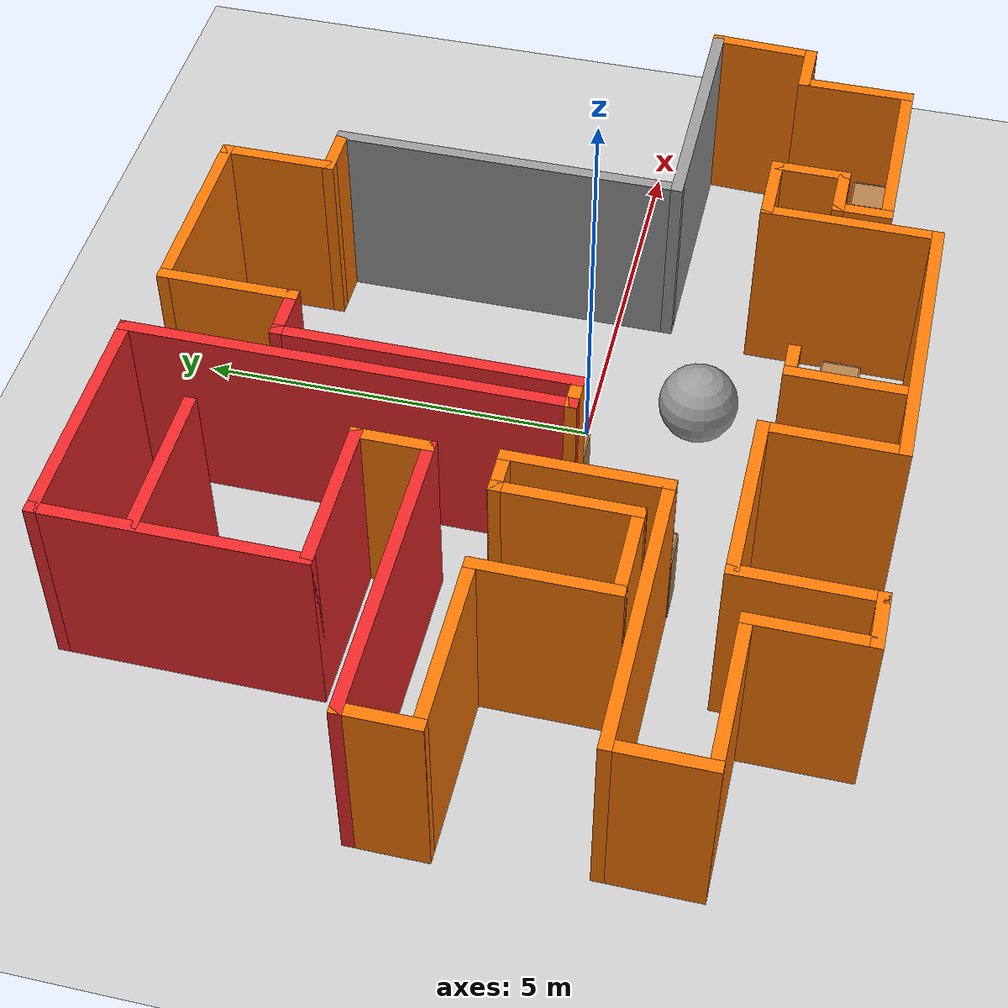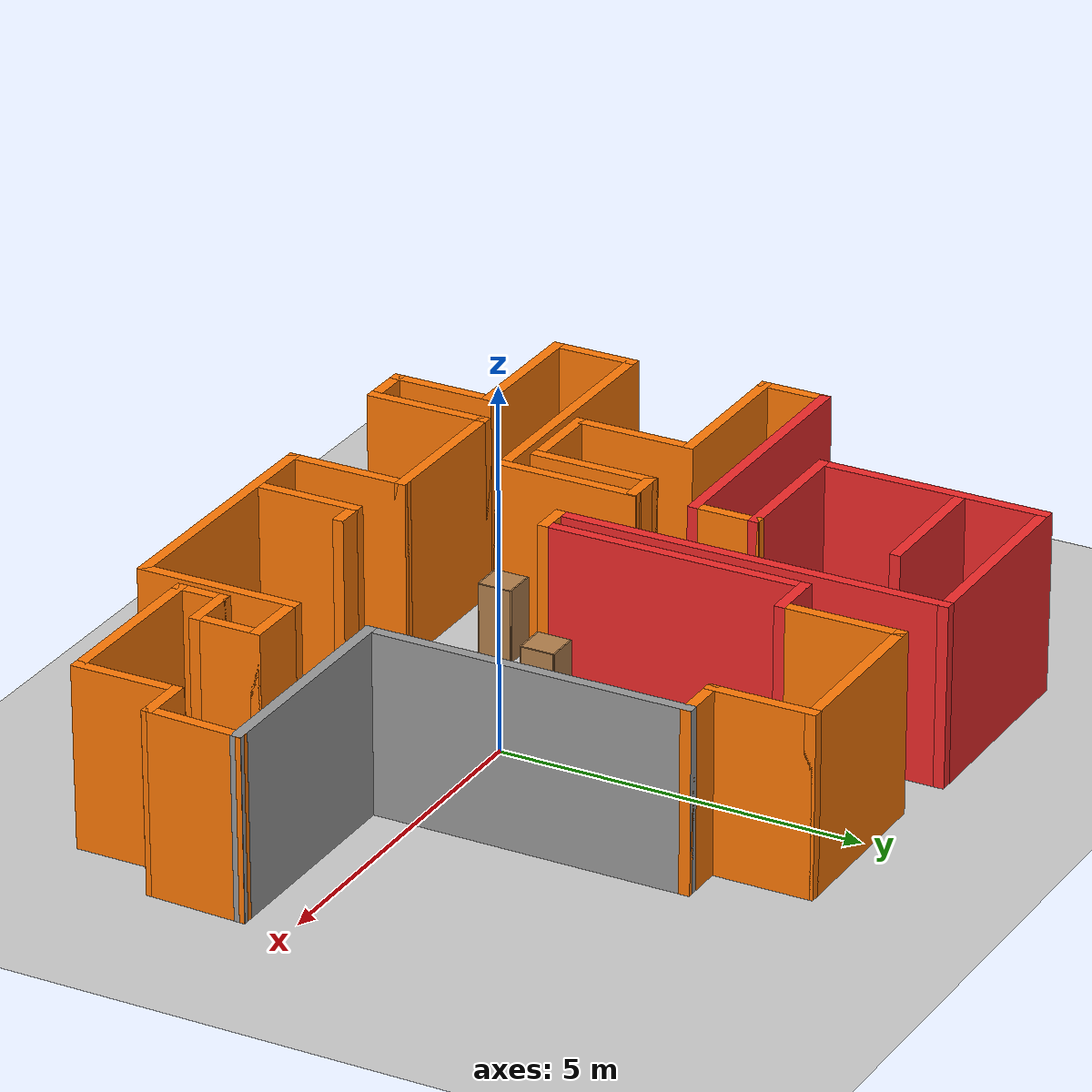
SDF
<sdf version="1.6">
 <world name="default">
  <model name="ground_plane">
   <static>1</static>
   <link name="link">
    <collision name="collision">
     <geometry><plane><normal>0 0 1</normal><size>100 100</size></plane></geometry>
     <surface><friction><ode><mu>100</mu><mu2>50</mu2></ode></friction></surface>
    </collision>
    <visual name="visual">
     <cast_shadows>0</cast_shadows>
     <geometry><plane><normal>0 0 1</normal><size>100 100</size></plane></geometry>
     <material>
      <script><uri>file://media/materials/scripts/gazebo.material</uri><name>Gazebo/Grey</name></script>
     </material>
    </visual>
   </link>
  </model>
  <model name="map_86">
   <pose>-0.595963 0.654681 0 0 -0 0</pose>
   <link name="Wall_0">
    <collision name="Wall_0_Collision">
     <geometry><box><size>3.25 0.15 2.5</size></box></geometry>
     <pose>0 0 1.25 0 -0 0</pose>
    </collision>
    <visual name="Wall_0_Visual">
     <pose>0 0 1.25 0 -0 0</pose>
     <geometry><box><size>3.25 0.15 2.5</size></box></geometry>
     <material>
      <script><uri>file://media/materials/scripts/gazebo.material</uri><name>Gazebo/Grey</name></script>
      <ambient>1 1 1 1</ambient>
     </material>
     <meta><layer>0</layer></meta>
    </visual>
    <pose>4.24853 -1.3 0 0 -0 3.14159</pose>
   </link>
   <link name="Wall_1">
    <collision name="Wall_1_Collision">
     <geometry><box><size>4.5 0.15 2.5</size></box></geometry>
     <pose>0 0 1.25 0 -0 0</pose>
    </collision>
    <visual name="Wall_1_Visual">
     <pose>0 0 1.25 0 -0 0</pose>
     <geometry><box><size>4.5 0.15 2.5</size></box></geometry>
     <material>
      <script><uri>file://media/materials/scripts/gazebo.material</uri><name>Gazebo/Grey</name></script>
      <ambient>1 1 1 1</ambient>
     </material>
     <meta><layer>0</layer></meta>
    </visual>
    <pose>2.69853 0.875 0 0 -0 1.5708</pose>
   </link>
   <link name="Wall_10">
    <collision name="Wall_10_Collision">
     <geometry><box><size>3 0.15 2.5</size></box></geometry>
     <pose>0 0 1.25 0 -0 0</pose>
    </collision>
    <visual name="Wall_10_Visual">
     <pose>0 0 1.25 0 -0 0</pose>
     <geometry><box><size>3 0.15 2.5</size></box></geometry>
     <material>
      <script><uri>file://media/materials/scripts/gazebo.material</uri><name>Gazebo/Grey</name></script>
      <ambient>0.937255 0.160784 0.160784 1</ambient>
     </material>
     <meta><layer>0</layer></meta>
    </visual>
    <pose>-2.62647 4.55 0 0 -0 3.14159</pose>
   </link>
   <link name="Wall_11">
    <collision name="Wall_11_Collision">
     <geometry><box><size>3.25 0.15 2.5</size></box></geometry>
     <pose>0 0 1.25 0 -0 0</pose>
    </collision>
    <visual name="Wall_11_Visual">
     <pose>0 0 1.25 0 -0 0</pose>
     <geometry><box><size>3.25 0.15 2.5</size></box></geometry>
     <material>
      <script><uri>file://media/materials/scripts/gazebo.material</uri><name>Gazebo/Grey</name></script>
      <ambient>0.937255 0.160784 0.160784 1</ambient>
     </material>
     <meta><layer>0</layer></meta>
    </visual>
    <pose>-4.05147 3 0 0 -0 -1.5708</pose>
   </link>
   <link name="Wall_12">
    <collision name="Wall_12_Collision">
     <geometry><box><size>2 0.15 2.5</size></box></geometry>
     <pose>0 0 1.25 0 -0 0</pose>
    </collision>
    <visual name="Wall_12_Visual">
     <pose>0 0 1.25 0 -0 0</pose>
     <geometry><box><size>2 0.15 2.5</size></box></geometry>
     <material>
      <script><uri>file://media/materials/scripts/gazebo.material</uri><name>Gazebo/Grey</name></script>
      <ambient>0.937255 0.160784 0.160784 1</ambient>
     </material>
     <meta><layer>0</layer></meta>
    </visual>
    <pose>-3.12647 1.45 0 0 -0 0</pose>
   </link>
   <link name="Wall_13">
    <collision name="Wall_13_Collision">
     <geometry><box><size>1 0.15 2.5</size></box></geometry>
     <pose>0 0 1.25 0 -0 0</pose>
    </collision>
    <visual name="Wall_13_Visual">
     <pose>0 0 1.25 0 -0 0</pose>
     <geometry><box><size>1 0.15 2.5</size></box></geometry>
     <material>
      <script><uri>file://media/materials/scripts/gazebo.material</uri><name>Gazebo/Grey</name></script>
      <ambient>0.996078 0.47451 0.0196078 1</ambient>
     </material>
     <meta><layer>0</layer></meta>
    </visual>
    <pose>-2.20147 1.025 0 0 -0 -1.5708</pose>
   </link>
   <link name="Wall_14">
    <collision name="Wall_14_Collision">
     <geometry><box><size>3.75 0.15 2.5</size></box></geometry>
     <pose>0 0 1.25 0 -0 0</pose>
    </collision>
    <visual name="Wall_14_Visual">
     <pose>0 0 1.25 0 -0 0</pose>
     <geometry><box><size>3.75 0.15 2.5</size></box></geometry>
     <material>
      <script><uri>file://media/materials/scripts/gazebo.material</uri><name>Gazebo/Grey</name></script>
      <ambient>0.937255 0.160784 0.160784 1</ambient>
     </material>
     <meta><layer>0</layer></meta>
    </visual>
    <pose>-4.00147 0.6 0 0 -0 3.14159</pose>
   </link>
   <link name="Wall_15">
    <collision name="Wall_15_Collision">
     <geometry><box><size>1 0.15 2.5</size></box></geometry>
     <pose>0 0 1.25 0 -0 0</pose>
    </collision>
    <visual name="Wall_15_Visual">
     <pose>0 0 1.25 0 -0 0</pose>
     <geometry><box><size>1 0.15 2.5</size></box></geometry>
     <material>
      <script><uri>file://media/materials/scripts/gazebo.material</uri><name>Gazebo/Grey</name></script>
      <ambient>0.996078 0.47451 0.0196078 1</ambient>
     </material>
     <meta><layer>0</layer></meta>
    </visual>
    <pose>-5.80147 0.175 0 0 -0 -1.5708</pose>
   </link>
   <link name="Wall_16">
    <collision name="Wall_16_Collision">
     <geometry><box><size>2.25 0.15 2.5</size></box></geometry>
     <pose>0 0 1.25 0 -0 0</pose>
    </collision>
    <visual name="Wall_16_Visual">
     <pose>0 0 1.25 0 -0 0</pose>
     <geometry><box><size>2.25 0.15 2.5</size></box></geometry>
     <material>
      <script><uri>file://media/materials/scripts/gazebo.material</uri><name>Gazebo/Grey</name></script>
      <ambient>0.996078 0.47451 0.0196078 1</ambient>
     </material>
     <meta><layer>0</layer></meta>
    </visual>
    <pose>-4.75147 -0.25 0 0 -0 0</pose>
   </link>
   <link name="Wall_17">
    <collision name="Wall_17_Collision">
     <geometry><box><size>1.75 0.15 2.5</size></box></geometry>
     <pose>0 0 1.25 0 -0 0</pose>
    </collision>
    <visual name="Wall_17_Visual">
     <pose>0 0 1.25 0 -0 0</pose>
     <geometry><box><size>1.75 0.15 2.5</size></box></geometry>
     <material>
      <script><uri>file://media/materials/scripts/gazebo.material</uri><name>Gazebo/Grey</name></script>
      <ambient>0.996078 0.47451 0.0196078 1</ambient>
     </material>
     <meta><layer>0</layer></meta>
    </visual>
    <pose>-3.70147 -1.05 0 0 -0 -1.5708</pose>
   </link>
   <link name="Wall_18">
    <collision name="Wall_18_Collision">
     <geometry><box><size>1.25 0.15 2.5</size></box></geometry>
     <pose>0 0 1.25 0 -0 0</pose>
    </collision>
    <visual name="Wall_18_Visual">
     <pose>0 0 1.25 0 -0 0</pose>
     <geometry><box><size>1.25 0.15 2.5</size></box></geometry>
     <material>
      <script><uri>file://media/materials/scripts/gazebo.material</uri><name>Gazebo/Grey</name></script>
      <ambient>0.996078 0.47451 0.0196078 1</ambient>
     </material>
     <meta><layer>0</layer></meta>
    </visual>
    <pose>-3.15147 -1.85 0 0 -0 0</pose>
   </link>
   <link name="Wall_19">
    <collision name="Wall_19_Collision">
     <geometry><box><size>1.75 0.15 2.5</size></box></geometry>
     <pose>0 0 1.25 0 -0 0</pose>
    </collision>
    <visual name="Wall_19_Visual">
     <pose>0 0 1.25 0 -0 0</pose>
     <geometry><box><size>1.75 0.15 2.5</size></box></geometry>
     <material>
      <script><uri>file://media/materials/scripts/gazebo.material</uri><name>Gazebo/Grey</name></script>
      <ambient>0.996078 0.47451 0.0196078 1</ambient>
     </material>
     <meta><layer>0</layer></meta>
    </visual>
    <pose>-2.60147 -1.05 0 0 -0 1.5708</pose>
   </link>
   <link name="Wall_2">
    <collision name="Wall_2_Collision">
     <geometry><box><size>0.75 0.15 2.5</size></box></geometry>
     <pose>0 0 1.25 0 -0 0</pose>
    </collision>
    <visual name="Wall_2_Visual">
     <pose>0 0 1.25 0 -0 0</pose>
     <geometry><box><size>0.75 0.15 2.5</size></box></geometry>
     <material>
      <script><uri>file://media/materials/scripts/gazebo.material</uri><name>Gazebo/Grey</name></script>
      <ambient>0.996078 0.47451 0.0196078 1</ambient>
     </material>
     <meta><layer>0</layer></meta>
    </visual>
    <pose>2.39853 3.05 0 0 -0 3.14159</pose>
   </link>
   <link name="Wall_20">
    <collision name="Wall_20_Collision">
     <geometry><box><size>0.588086 0.15 2.5</size></box></geometry>
     <pose>0 0 1.25 0 -0 0</pose>
    </collision>
    <visual name="Wall_20_Visual">
     <pose>0 0 1.25 0 -0 0</pose>
     <geometry><box><size>0.588086 0.15 2.5</size></box></geometry>
     <material>
      <script><uri>file://media/materials/scripts/gazebo.material</uri><name>Gazebo/Grey</name></script>
      <ambient>0.996078 0.47451 0.0196078 1</ambient>
     </material>
     <meta><layer>0</layer></meta>
    </visual>
    <pose>-2.38243 -0.25 0 0 -0 0</pose>
   </link>
   <link name="Wall_21">
    <collision name="Wall_21_Collision">
     <geometry><box><size>2 0.15 2.5</size></box></geometry>
     <pose>0 0 1.25 0 -0 0</pose>
    </collision>
    <visual name="Wall_21_Visual">
     <pose>0 0 1.25 0 -0 0</pose>
     <geometry><box><size>2 0.15 2.5</size></box></geometry>
     <material>
      <script><uri>file://media/materials/scripts/gazebo.material</uri><name>Gazebo/Grey</name></script>
      <ambient>0.996078 0.47451 0.0196078 1</ambient>
     </material>
     <meta><layer>0</layer></meta>
    </visual>
    <pose>-2.14025 -1.175 0 0 -0 -1.5708</pose>
   </link>
   <link name="Wall_22">
    <collision name="Wall_22_Collision">
     <geometry><box><size>3.58809 0.15 2.5</size></box></geometry>
     <pose>0 0 1.25 0 -0 0</pose>
    </collision>
    <visual name="Wall_22_Visual">
     <pose>0 0 1.25 0 -0 0</pose>
     <geometry><box><size>3.58809 0.15 2.5</size></box></geometry>
     <material>
      <script><uri>file://media/materials/scripts/gazebo.material</uri><name>Gazebo/Grey</name></script>
      <ambient>0.996078 0.47451 0.0196078 1</ambient>
     </material>
     <meta><layer>0</layer></meta>
    </visual>
    <pose>-3.88243 -2.1 0 0 -0 3.14159</pose>
   </link>
   <link name="Wall_23">
    <collision name="Wall_23_Collision">
     <geometry><box><size>1.25 0.15 2.5</size></box></geometry>
     <pose>0 0 1.25 0 -0 0</pose>
    </collision>
    <visual name="Wall_23_Visual">
     <pose>0 0 1.25 0 -0 0</pose>
     <geometry><box><size>1.25 0.15 2.5</size></box></geometry>
     <material>
      <script><uri>file://media/materials/scripts/gazebo.material</uri><name>Gazebo/Grey</name></script>
      <ambient>0.996078 0.47451 0.0196078 1</ambient>
     </material>
     <meta><layer>0</layer></meta>
    </visual>
    <pose>-5.60147 -2.65 0 0 -0 -1.5708</pose>
   </link>
   <link name="Wall_24">
    <collision name="Wall_24_Collision">
     <geometry><box><size>2 0.15 2.5</size></box></geometry>
     <pose>0 0 1.25 0 -0 0</pose>
    </collision>
    <visual name="Wall_24_Visual">
     <pose>0 0 1.25 0 -0 0</pose>
     <geometry><box><size>2 0.15 2.5</size></box></geometry>
     <material>
      <script><uri>file://media/materials/scripts/gazebo.material</uri><name>Gazebo/Grey</name></script>
      <ambient>0.996078 0.47451 0.0196078 1</ambient>
     </material>
     <meta><layer>0</layer></meta>
    </visual>
    <pose>-4.67647 -3.2 0 0 -0 0</pose>
   </link>
   <link name="Wall_25">
    <collision name="Wall_25_Collision">
     <geometry><box><size>1.5 0.15 2.5</size></box></geometry>
     <pose>0 0 1.25 0 -0 0</pose>
    </collision>
    <visual name="Wall_25_Visual">
     <pose>0 0 1.25 0 -0 0</pose>
     <geometry><box><size>1.5 0.15 2.5</size></box></geometry>
     <material>
      <script><uri>file://media/materials/scripts/gazebo.material</uri><name>Gazebo/Grey</name></script>
      <ambient>0.996078 0.47451 0.0196078 1</ambient>
     </material>
     <meta><layer>0</layer></meta>
    </visual>
    <pose>-3.75147 -3.875 0 0 -0 -1.5708</pose>
   </link>
   <link name="Wall_26">
    <collision name="Wall_26_Collision">
     <geometry><box><size>0.75 0.15 2.5</size></box></geometry>
     <pose>0 0 1.25 0 -0 0</pose>
    </collision>
    <visual name="Wall_26_Visual">
     <pose>0 0 1.25 0 -0 0</pose>
     <geometry><box><size>0.75 0.15 2.5</size></box></geometry>
     <material>
      <script><uri>file://media/materials/scripts/gazebo.material</uri><name>Gazebo/Grey</name></script>
      <ambient>0.996078 0.47451 0.0196078 1</ambient>
     </material>
     <meta><layer>0</layer></meta>
    </visual>
    <pose>-3.45147 -4.55 0 0 -0 0</pose>
   </link>
   <link name="Wall_27">
    <collision name="Wall_27_Collision">
     <geometry><box><size>1.75 0.15 2.5</size></box></geometry>
     <pose>0 0 1.25 0 -0 0</pose>
    </collision>
    <visual name="Wall_27_Visual">
     <pose>0 0 1.25 0 -0 0</pose>
     <geometry><box><size>1.75 0.15 2.5</size></box></geometry>
     <material>
      <script><uri>file://media/materials/scripts/gazebo.material</uri><name>Gazebo/Grey</name></script>
      <ambient>0.996078 0.47451 0.0196078 1</ambient>
     </material>
     <meta><layer>0</layer></meta>
    </visual>
    <pose>-3.15147 -3.75 0 0 -0 1.5708</pose>
   </link>
   <link name="Wall_28">
    <collision name="Wall_28_Collision">
     <geometry><box><size>2.25 0.15 2.5</size></box></geometry>
     <pose>0 0 1.25 0 -0 0</pose>
    </collision>
    <visual name="Wall_28_Visual">
     <pose>0 0 1.25 0 -0 0</pose>
     <geometry><box><size>2.25 0.15 2.5</size></box></geometry>
     <material>
      <script><uri>file://media/materials/scripts/gazebo.material</uri><name>Gazebo/Grey</name></script>
      <ambient>0.996078 0.47451 0.0196078 1</ambient>
     </material>
     <meta><layer>0</layer></meta>
    </visual>
    <pose>-2.10147 -2.95 0 0 -0 0</pose>
   </link>
   <link name="Wall_29">
    <collision name="Wall_29_Collision">
     <geometry><box><size>1.75 0.15 2.5</size></box></geometry>
     <pose>0 0 1.25 0 -0 0</pose>
    </collision>
    <visual name="Wall_29_Visual">
     <pose>0 0 1.25 0 -0 0</pose>
     <geometry><box><size>1.75 0.15 2.5</size></box></geometry>
     <material>
      <script><uri>file://media/materials/scripts/gazebo.material</uri><name>Gazebo/Grey</name></script>
      <ambient>0.996078 0.47451 0.0196078 1</ambient>
     </material>
     <meta><layer>0</layer></meta>
    </visual>
    <pose>-1.05147 -3.75 0 0 -0 -1.5708</pose>
   </link>
   <link name="Wall_3">
    <collision name="Wall_3_Collision">
     <geometry><box><size>1.5 0.15 2.5</size></box></geometry>
     <pose>0 0 1.25 0 -0 0</pose>
    </collision>
    <visual name="Wall_3_Visual">
     <pose>0 0 1.25 0 -0 0</pose>
     <geometry><box><size>1.5 0.15 2.5</size></box></geometry>
     <material>
      <script><uri>file://media/materials/scripts/gazebo.material</uri><name>Gazebo/Grey</name></script>
      <ambient>0.996078 0.47451 0.0196078 1</ambient>
     </material>
     <meta><layer>0</layer></meta>
    </visual>
    <pose>2.09853 3.725 0 0 -0 1.5708</pose>
   </link>
   <link name="Wall_30">
    <collision name="Wall_30_Collision">
     <geometry><box><size>3.75 0.15 2.5</size></box></geometry>
     <pose>0 0 1.25 0 -0 0</pose>
    </collision>
    <visual name="Wall_30_Visual">
     <pose>0 0 1.25 0 -0 0</pose>
     <geometry><box><size>3.75 0.15 2.5</size></box></geometry>
     <material>
      <script><uri>file://media/materials/scripts/gazebo.material</uri><name>Gazebo/Grey</name></script>
      <ambient>0.996078 0.47451 0.0196078 1</ambient>
     </material>
     <meta><layer>0</layer></meta>
    </visual>
    <pose>0.748531 -4.55 0 0 -0 0</pose>
   </link>
   <link name="Wall_31">
    <collision name="Wall_31_Collision">
     <geometry><box><size>2.25 0.15 2.5</size></box></geometry>
     <pose>0 0 1.25 0 -0 0</pose>
    </collision>
    <visual name="Wall_31_Visual">
     <pose>0 0 1.25 0 -0 0</pose>
     <geometry><box><size>2.25 0.15 2.5</size></box></geometry>
     <material>
      <script><uri>file://media/materials/scripts/gazebo.material</uri><name>Gazebo/Grey</name></script>
      <ambient>0.996078 0.47451 0.0196078 1</ambient>
     </material>
     <meta><layer>0</layer></meta>
    </visual>
    <pose>2.54853 -3.5 0 0 -0 1.5708</pose>
   </link>
   <link name="Wall_32">
    <collision name="Wall_32_Collision">
     <geometry><box><size>1 0.15 2.5</size></box></geometry>
     <pose>0 0 1.25 0 -0 0</pose>
    </collision>
    <visual name="Wall_32_Visual">
     <pose>0 0 1.25 0 -0 0</pose>
     <geometry><box><size>1 0.15 2.5</size></box></geometry>
     <material>
      <script><uri>file://media/materials/scripts/gazebo.material</uri><name>Gazebo/Grey</name></script>
      <ambient>0.996078 0.47451 0.0196078 1</ambient>
     </material>
     <meta><layer>0</layer></meta>
    </visual>
    <pose>2.97353 -2.45 0 0 -0 0</pose>
   </link>
   <link name="Wall_33">
    <collision name="Wall_33_Collision">
     <geometry><box><size>1 0.15 2.5</size></box></geometry>
     <pose>0 0 1.25 0 -0 0</pose>
    </collision>
    <visual name="Wall_33_Visual">
     <pose>0 0 1.25 0 -0 0</pose>
     <geometry><box><size>1 0.15 2.5</size></box></geometry>
     <material>
      <script><uri>file://media/materials/scripts/gazebo.material</uri><name>Gazebo/Grey</name></script>
      <ambient>0.996078 0.47451 0.0196078 1</ambient>
     </material>
     <meta><layer>0</layer></meta>
    </visual>
    <pose>3.39853 -2.875 0 0 -0 -1.5708</pose>
   </link>
   <link name="Wall_34">
    <collision name="Wall_34_Collision">
     <geometry><box><size>0.75 0.15 2.5</size></box></geometry>
     <pose>0 0 1.25 0 -0 0</pose>
    </collision>
    <visual name="Wall_34_Visual">
     <pose>0 0 1.25 0 -0 0</pose>
     <geometry><box><size>0.75 0.15 2.5</size></box></geometry>
     <material>
      <script><uri>file://media/materials/scripts/gazebo.material</uri><name>Gazebo/Grey</name></script>
      <ambient>0.996078 0.47451 0.0196078 1</ambient>
     </material>
     <meta><layer>0</layer></meta>
    </visual>
    <pose>3.09853 -3.3 0 0 -0 3.14159</pose>
   </link>
   <link name="Wall_35">
    <collision name="Wall_35_Collision">
     <geometry><box><size>0.75 0.15 2.5</size></box></geometry>
     <pose>0 0 1.25 0 -0 0</pose>
    </collision>
    <visual name="Wall_35_Visual">
     <pose>0 0 1.25 0 -0 0</pose>
     <geometry><box><size>0.75 0.15 2.5</size></box></geometry>
     <material>
      <script><uri>file://media/materials/scripts/gazebo.material</uri><name>Gazebo/Grey</name></script>
      <ambient>0.996078 0.47451 0.0196078 1</ambient>
     </material>
     <meta><layer>0</layer></meta>
    </visual>
    <pose>2.79853 -3.6 0 0 -0 -1.5708</pose>
   </link>
   <link name="Wall_36">
    <collision name="Wall_36_Collision">
     <geometry><box><size>2.5 0.15 2.5</size></box></geometry>
     <pose>0 0 1.25 0 -0 0</pose>
    </collision>
    <visual name="Wall_36_Visual">
     <pose>0 0 1.25 0 -0 0</pose>
     <geometry><box><size>2.5 0.15 2.5</size></box></geometry>
     <material>
      <script><uri>file://media/materials/scripts/gazebo.material</uri><name>Gazebo/Grey</name></script>
      <ambient>0.996078 0.47451 0.0196078 1</ambient>
     </material>
     <meta><layer>0</layer></meta>
    </visual>
    <pose>3.97353 -3.9 0 0 -0 0</pose>
   </link>
   <link name="Wall_37">
    <collision name="Wall_37_Collision">
     <geometry><box><size>1.5 0.15 2.5</size></box></geometry>
     <pose>0 0 1.25 0 -0 0</pose>
    </collision>
    <visual name="Wall_37_Visual">
     <pose>0 0 1.25 0 -0 0</pose>
     <geometry><box><size>1.5 0.15 2.5</size></box></geometry>
     <material>
      <script><uri>file://media/materials/scripts/gazebo.material</uri><name>Gazebo/Grey</name></script>
      <ambient>0.996078 0.47451 0.0196078 1</ambient>
     </material>
     <meta><layer>0</layer></meta>
    </visual>
    <pose>5.14853 -3.225 0 0 -0 1.5708</pose>
   </link>
   <link name="Wall_38">
    <collision name="Wall_38_Collision">
     <geometry><box><size>0.75 0.15 2.5</size></box></geometry>
     <pose>0 0 1.25 0 -0 0</pose>
    </collision>
    <visual name="Wall_38_Visual">
     <pose>0 0 1.25 0 -0 0</pose>
     <geometry><box><size>0.75 0.15 2.5</size></box></geometry>
     <material>
      <script><uri>file://media/materials/scripts/gazebo.material</uri><name>Gazebo/Grey</name></script>
      <ambient>0.996078 0.47451 0.0196078 1</ambient>
     </material>
     <meta><layer>0</layer></meta>
    </visual>
    <pose>5.44853 -2.55 0 0 -0 0</pose>
   </link>
   <link name="Wall_39">
    <collision name="Wall_39_Collision">
     <geometry><box><size>1.401 0.15 2.5</size></box></geometry>
     <pose>0 0 1.25 0 -0 0</pose>
    </collision>
    <visual name="Wall_39_Visual">
     <pose>0 0 1.25 0 -0 0</pose>
     <geometry><box><size>1.401 0.15 2.5</size></box></geometry>
     <material>
      <script><uri>file://media/materials/scripts/gazebo.material</uri><name>Gazebo/Grey</name></script>
      <ambient>0.996078 0.47451 0.0196078 1</ambient>
     </material>
     <meta><layer>0</layer></meta>
    </visual>
    <pose>5.77353 -1.925 0 0 -0 1.53082</pose>
   </link>
   <link name="Wall_4">
    <collision name="Wall_4_Collision">
     <geometry><box><size>2.5 0.15 2.5</size></box></geometry>
     <pose>0 0 1.25 0 -0 0</pose>
    </collision>
    <visual name="Wall_4_Visual">
     <pose>0 0 1.25 0 -0 0</pose>
     <geometry><box><size>2.5 0.15 2.5</size></box></geometry>
     <material>
      <script><uri>file://media/materials/scripts/gazebo.material</uri><name>Gazebo/Grey</name></script>
      <ambient>0.996078 0.47451 0.0196078 1</ambient>
     </material>
     <meta><layer>0</layer></meta>
    </visual>
    <pose>0.923531 4.4 0 0 -0 3.14159</pose>
   </link>
   <link name="Wall_40">
    <collision name="Wall_40_Collision">
     <geometry><box><size>3.25 0.15 2.5</size></box></geometry>
     <pose>0 0 1.25 0 -0 0</pose>
    </collision>
    <visual name="Wall_40_Visual">
     <pose>0 0 1.25 0 -0 0</pose>
     <geometry><box><size>3.25 0.15 2.5</size></box></geometry>
     <material>
      <script><uri>file://media/materials/scripts/gazebo.material</uri><name>Gazebo/Grey</name></script>
      <ambient>0.996078 0.47451 0.0196078 1</ambient>
     </material>
     <meta><layer>0</layer></meta>
    </visual>
    <pose>4.24853 -1.3 0 0 -0 3.14159</pose>
   </link>
   <link name="Wall_41">
    <collision name="Wall_41_Collision">
     <geometry><box><size>4.5 0.15 2.5</size></box></geometry>
     <pose>0 0 1.25 0 -0 0</pose>
    </collision>
    <visual name="Wall_41_Visual">
     <pose>0 0 1.25 0 -0 0</pose>
     <geometry><box><size>4.5 0.15 2.5</size></box></geometry>
     <material>
      <script><uri>file://media/materials/scripts/gazebo.material</uri><name>Gazebo/Grey</name></script>
      <ambient>0.996078 0.47451 0.0196078 1</ambient>
     </material>
     <meta><layer>0</layer></meta>
    </visual>
    <pose>2.69853 0.875 0 0 -0 1.5708</pose>
   </link>
   <link name="Wall_43">
    <collision name="Wall_43_Collision">
     <geometry><box><size>2 0.15 2.5</size></box></geometry>
     <pose>0 0 1.25 0 -0 0</pose>
    </collision>
    <visual name="Wall_43_Visual">
     <pose>0 0 1.25 0 -0 0</pose>
     <geometry><box><size>2 0.15 2.5</size></box></geometry>
     <material>
      <script><uri>file://media/materials/scripts/gazebo.material</uri><name>Gazebo/Grey</name></script>
      <ambient>0.937255 0.160784 0.160784 1</ambient>
     </material>
     <meta><layer>0</layer></meta>
    </visual>
    <pose>-3.11865 3.41661 0 0 -0 0</pose>
   </link>
   <link name="Wall_45">
    <collision name="Wall_45_Collision">
     <geometry><box><size>1.5 0.15 2.5</size></box></geometry>
     <pose>0 0 1.25 0 -0 0</pose>
    </collision>
    <visual name="Wall_45_Visual">
     <pose>0 0 1.25 0 -0 0</pose>
     <geometry><box><size>1.5 0.15 2.5</size></box></geometry>
     <material>
      <script><uri>file://media/materials/scripts/gazebo.material</uri><name>Gazebo/Grey</name></script>
      <ambient>0.996078 0.47451 0.0196078 1</ambient>
     </material>
     <meta><layer>0</layer></meta>
    </visual>
    <pose>-0.134574 -3.79592 0 0 -0 1.5708</pose>
   </link>
   <link name="Wall_46">
    <collision name="Wall_46_Collision">
     <geometry><box><size>0.5 0.15 2.5</size></box></geometry>
     <pose>0 0 1.25 0 -0 0</pose>
    </collision>
    <visual name="Wall_46_Visual">
     <pose>0 0 1.25 0 -0 0</pose>
     <geometry><box><size>0.5 0.15 2.5</size></box></geometry>
     <material>
      <script><uri>file://media/materials/scripts/gazebo.material</uri><name>Gazebo/Grey</name></script>
      <ambient>0.996078 0.47451 0.0196078 1</ambient>
     </material>
     <meta><layer>0</layer></meta>
    </visual>
    <pose>0.040426 -3.12092 0 0 -0 0</pose>
   </link>
   <link name="Wall_5">
    <collision name="Wall_5_Collision">
     <geometry><box><size>1.75 0.15 2.5</size></box></geometry>
     <pose>0 0 1.25 0 -0 0</pose>
    </collision>
    <visual name="Wall_5_Visual">
     <pose>0 0 1.25 0 -0 0</pose>
     <geometry><box><size>1.75 0.15 2.5</size></box></geometry>
     <material>
      <script><uri>file://media/materials/scripts/gazebo.material</uri><name>Gazebo/Grey</name></script>
      <ambient>0.996078 0.47451 0.0196078 1</ambient>
     </material>
     <meta><layer>0</layer></meta>
    </visual>
    <pose>-0.251469 3.6 0 0 -0 -1.5708</pose>
   </link>
   <link name="Wall_6">
    <collision name="Wall_6_Collision">
     <geometry><box><size>0.75 0.15 2.5</size></box></geometry>
     <pose>0 0 1.25 0 -0 0</pose>
    </collision>
    <visual name="Wall_6_Visual">
     <pose>0 0 1.25 0 -0 0</pose>
     <geometry><box><size>0.75 0.15 2.5</size></box></geometry>
     <material>
      <script><uri>file://media/materials/scripts/gazebo.material</uri><name>Gazebo/Grey</name></script>
      <ambient>0.937255 0.160784 0.160784 1</ambient>
     </material>
     <meta><layer>0</layer></meta>
    </visual>
    <pose>-0.551469 2.8 0 0 -0 3.14159</pose>
   </link>
   <link name="Wall_7">
    <collision name="Wall_7_Collision">
     <geometry><box><size>3.75 0.15 2.5</size></box></geometry>
     <pose>0 0 1.25 0 -0 0</pose>
    </collision>
    <visual name="Wall_7_Visual">
     <pose>0 0 1.25 0 -0 0</pose>
     <geometry><box><size>3.75 0.15 2.5</size></box></geometry>
     <material>
      <script><uri>file://media/materials/scripts/gazebo.material</uri><name>Gazebo/Grey</name></script>
      <ambient>0.937255 0.160784 0.160784 1</ambient>
     </material>
     <meta><layer>0</layer></meta>
    </visual>
    <pose>-0.851469 1 0 0 -0 -1.5708</pose>
   </link>
   <link name="Wall_8">
    <collision name="Wall_8_Collision">
     <geometry><box><size>0.5 0.15 2.5</size></box></geometry>
     <pose>0 0 1.25 0 -0 0</pose>
    </collision>
    <visual name="Wall_8_Visual">
     <pose>0 0 1.25 0 -0 0</pose>
     <geometry><box><size>0.5 0.15 2.5</size></box></geometry>
     <material>
      <script><uri>file://media/materials/scripts/gazebo.material</uri><name>Gazebo/Grey</name></script>
      <ambient>0.996078 0.47451 0.0196078 1</ambient>
     </material>
     <meta><layer>0</layer></meta>
    </visual>
    <pose>-1.02647 -0.8 0 0 -0 3.14159</pose>
   </link>
   <link name="Wall_9">
    <collision name="Wall_9_Collision">
     <geometry><box><size>5.5 0.15 2.5</size></box></geometry>
     <pose>0 0 1.25 0 -0 0</pose>
    </collision>
    <visual name="Wall_9_Visual">
     <pose>0 0 1.25 0 -0 0</pose>
     <geometry><box><size>5.5 0.15 2.5</size></box></geometry>
     <material>
      <script><uri>file://media/materials/scripts/gazebo.material</uri><name>Gazebo/Grey</name></script>
      <ambient>0.937255 0.160784 0.160784 1</ambient>
     </material>
     <meta><layer>0</layer></meta>
    </visual>
    <pose>-1.20147 1.875 0 0 -0 1.5708</pose>
   </link>
   <static>1</static>
  </model>
  <model name="unit_sphere">
   <pose>0.403624 -1.33927 0.5 0 -0 0</pose>
   <link name="link">
    <inertial>
     <mass>1</mass>
     <inertia><ixx>0.1</ixx><ixy>0</ixy><ixz>0</ixz><iyy>0.1</iyy><iyz>0</iyz><izz>0.1</izz></inertia>
    </inertial>
    <collision name="collision"><geometry><sphere><radius>0.5</radius></sphere></geometry></collision>
    <visual name="visual">
     <geometry><sphere><radius>0.5</radius></sphere></geometry>
     <material>
      <script><name>Gazebo/Grey</name><uri>file://media/materials/scripts/gazebo.material</uri></script>
     </material>
    </visual>
   </link>
  </model>
  <model name="cabinet">
   <static>1</static>
   <link name="cabinet_bottom_plate">
    <inertial>
     <pose>0 0 -1 0 -0 0</pose>
     <inertia><ixx>2.05</ixx><ixy>0</ixy><ixz>0</ixz><iyy>2.05</iyy><iyz>0</iyz><izz>2.05</izz></inertia>
     <mass>25</mass>
    </inertial>
    <collision name="cabinet_bottom_plate_geom">
     <pose>0 0 0.01 0 -0 0</pose>
     <geometry><box><size>0.45 0.45 0.02</size></box></geometry>
    </collision>
    <visual name="cabinet_bottom_plate_geom_visual">
     <pose>0 0 0.01 0 -0 0</pose>
     <geometry><box><size>0.45 0.45 0.02</size></box></geometry>
     <material>
      <script><uri>file://media/materials/scripts/gazebo.material</uri><name>Gazebo/Wood</name></script>
     </material>
    </visual>
    <collision name="cabinet_bottom_plate_geom_cabinet_back_plate">
     <pose>0.235 0 0.51 0 -0 0</pose>
     <geometry><box><size>0.02 0.45 1.02</size></box></geometry>
    </collision>
    <visual name="cabinet_bottom_plate_geom_cabinet_back_plate_visual">
     <pose>0.235 0 0.51 0 -0 0</pose>
     <geometry><box><size>0.02 0.45 1.02</size></box></geometry>
     <material>
      <script><uri>file://media/materials/scripts/gazebo.material</uri><name>Gazebo/Wood</name></script>
     </material>
    </visual>
    <collision name="cabinet_bottom_plate_geom_cabinet_left_plate">
     <pose>0 0.235 0.51 0 -0 0</pose>
     <geometry><box><size>0.45 0.02 1.02</size></box></geometry>
    </collision>
    <visual name="cabinet_bottom_plate_geom_cabinet_left_plate_visual">
     <pose>0 0.235 0.51 0 -0 0</pose>
     <geometry><box><size>0.45 0.02 1.02</size></box></geometry>
     <material>
      <script><uri>file://media/materials/scripts/gazebo.material</uri><name>Gazebo/Wood</name></script>
     </material>
    </visual>
    <collision name="cabinet_bottom_plate_geom_cabinet_middle_plate">
     <pose>0 0 0.51 0 -0 0</pose>
     <geometry><box><size>0.45 0.45 0.02</size></box></geometry>
    </collision>
    <visual name="cabinet_bottom_plate_geom_cabinet_middle_plate_visual">
     <pose>0 0 0.51 0 -0 0</pose>
     <geometry><box><size>0.45 0.45 0.02</size></box></geometry>
     <material>
      <script><uri>file://media/materials/scripts/gazebo.material</uri><name>Gazebo/Wood</name></script>
     </material>
    </visual>
    <collision name="cabinet_bottom_plate_geom_cabinet_right_plate">
     <pose>0 -0.235 0.51 0 -0 0</pose>
     <geometry><box><size>0.45 0.02 1.02</size></box></geometry>
    </collision>
    <visual name="cabinet_bottom_plate_geom_cabinet_right_plate_visual">
     <pose>0 -0.235 0.51 0 -0 0</pose>
     <geometry><box><size>0.45 0.02 1.02</size></box></geometry>
     <material>
      <script><uri>file://media/materials/scripts/gazebo.material</uri><name>Gazebo/Wood</name></script>
     </material>
    </visual>
    <collision name="cabinet_bottom_plate_geom_cabinet_top_plate">
     <pose>0 0 1.01 0 -0 0</pose>
     <geometry><box><size>0.45 0.45 0.02</size></box></geometry>
    </collision>
    <visual name="cabinet_bottom_plate_geom_cabinet_top_plate_visual">
     <pose>0 0 1.01 0 -0 0</pose>
     <geometry><box><size>0.45 0.45 0.02</size></box></geometry>
     <material>
      <script><uri>file://media/materials/scripts/gazebo.material</uri><name>Gazebo/Wood</name></script>
     </material>
    </visual>
   </link>
   <pose>-2.41994 -1.28307 0 0 -0 0</pose>
  </model>
  <model name="cabinet_1">
   <static>1</static>
   <link name="cabinet_bottom_plate">
    <inertial>
     <pose>0 0 -1 0 -0 0</pose>
     <inertia><ixx>2.05</ixx><ixy>0</ixy><ixz>0</ixz><iyy>2.05</iyy><iyz>0</iyz><izz>2.05</izz></inertia>
     <mass>25</mass>
    </inertial>
    <collision name="cabinet_bottom_plate_geom">
     <pose>0 0 0.01 0 -0 0</pose>
     <geometry><box><size>0.45 0.45 0.02</size></box></geometry>
    </collision>
    <visual name="cabinet_bottom_plate_geom_visual">
     <pose>0 0 0.01 0 -0 0</pose>
     <geometry><box><size>0.45 0.45 0.02</size></box></geometry>
     <material>
      <script><uri>file://media/materials/scripts/gazebo.material</uri><name>Gazebo/Wood</name></script>
     </material>
    </visual>
    <collision name="cabinet_bottom_plate_geom_cabinet_back_plate">
     <pose>0.235 0 0.51 0 -0 0</pose>
     <geometry><box><size>0.02 0.45 1.02</size></box></geometry>
    </collision>
    <visual name="cabinet_bottom_plate_geom_cabinet_back_plate_visual">
     <pose>0.235 0 0.51 0 -0 0</pose>
     <geometry><box><size>0.02 0.45 1.02</size></box></geometry>
     <material>
      <script><uri>file://media/materials/scripts/gazebo.material</uri><name>Gazebo/Wood</name></script>
     </material>
    </visual>
    <collision name="cabinet_bottom_plate_geom_cabinet_left_plate">
     <pose>0 0.235 0.51 0 -0 0</pose>
     <geometry><box><size>0.45 0.02 1.02</size></box></geometry>
    </collision>
    <visual name="cabinet_bottom_plate_geom_cabinet_left_plate_visual">
     <pose>0 0.235 0.51 0 -0 0</pose>
     <geometry><box><size>0.45 0.02 1.02</size></box></geometry>
     <material>
      <script><uri>file://media/materials/scripts/gazebo.material</uri><name>Gazebo/Wood</name></script>
     </material>
    </visual>
    <collision name="cabinet_bottom_plate_geom_cabinet_middle_plate">
     <pose>0 0 0.51 0 -0 0</pose>
     <geometry><box><size>0.45 0.45 0.02</size></box></geometry>
    </collision>
    <visual name="cabinet_bottom_plate_geom_cabinet_middle_plate_visual">
     <pose>0 0 0.51 0 -0 0</pose>
     <geometry><box><size>0.45 0.45 0.02</size></box></geometry>
     <material>
      <script><uri>file://media/materials/scripts/gazebo.material</uri><name>Gazebo/Wood</name></script>
     </material>
    </visual>
    <collision name="cabinet_bottom_plate_geom_cabinet_right_plate">
     <pose>0 -0.235 0.51 0 -0 0</pose>
     <geometry><box><size>0.45 0.02 1.02</size></box></geometry>
    </collision>
    <visual name="cabinet_bottom_plate_geom_cabinet_right_plate_visual">
     <pose>0 -0.235 0.51 0 -0 0</pose>
     <geometry><box><size>0.45 0.02 1.02</size></box></geometry>
     <material>
      <script><uri>file://media/materials/scripts/gazebo.material</uri><name>Gazebo/Wood</name></script>
     </material>
    </visual>
    <collision name="cabinet_bottom_plate_geom_cabinet_top_plate">
     <pose>0 0 1.01 0 -0 0</pose>
     <geometry><box><size>0.45 0.45 0.02</size></box></geometry>
    </collision>
    <visual name="cabinet_bottom_plate_geom_cabinet_top_plate_visual">
     <pose>0 0 1.01 0 -0 0</pose>
     <geometry><box><size>0.45 0.45 0.02</size></box></geometry>
     <material>
      <script><uri>file://media/materials/scripts/gazebo.material</uri><name>Gazebo/Wood</name></script>
     </material>
    </visual>
   </link>
   <pose>-1.13323 0.032353 0 0 -0 0</pose>
  </model>
  <model name="cabinet_4">
   <static>1</static>
   <link name="cabinet_bottom_plate">
    <inertial>
     <pose>0 0 -1 0 -0 0</pose>
     <inertia><ixx>2.05</ixx><ixy>0</ixy><ixz>0</ixz><iyy>2.05</iyy><iyz>0</iyz><izz>2.05</izz></inertia>
     <mass>25</mass>
    </inertial>
    <collision name="cabinet_bottom_plate_geom">
     <pose>0 0 0.01 0 -0 0</pose>
     <geometry><box><size>0.45 0.45 0.02</size></box></geometry>
    </collision>
    <visual name="cabinet_bottom_plate_geom_visual">
     <pose>0 0 0.01 0 -0 0</pose>
     <geometry><box><size>0.45 0.45 0.02</size></box></geometry>
     <material>
      <script><uri>file://media/materials/scripts/gazebo.material</uri><name>Gazebo/Wood</name></script>
     </material>
    </visual>
    <collision name="cabinet_bottom_plate_geom_cabinet_back_plate">
     <pose>0.235 0 0.51 0 -0 0</pose>
     <geometry><box><size>0.02 0.45 1.02</size></box></geometry>
    </collision>
    <visual name="cabinet_bottom_plate_geom_cabinet_back_plate_visual">
     <pose>0.235 0 0.51 0 -0 0</pose>
     <geometry><box><size>0.02 0.45 1.02</size></box></geometry>
     <material>
      <script><uri>file://media/materials/scripts/gazebo.material</uri><name>Gazebo/Wood</name></script>
     </material>
    </visual>
    <collision name="cabinet_bottom_plate_geom_cabinet_left_plate">
     <pose>0 0.235 0.51 0 -0 0</pose>
     <geometry><box><size>0.45 0.02 1.02</size></box></geometry>
    </collision>
    <visual name="cabinet_bottom_plate_geom_cabinet_left_plate_visual">
     <pose>0 0.235 0.51 0 -0 0</pose>
     <geometry><box><size>0.45 0.02 1.02</size></box></geometry>
     <material>
      <script><uri>file://media/materials/scripts/gazebo.material</uri><name>Gazebo/Wood</name></script>
     </material>
    </visual>
    <collision name="cabinet_bottom_plate_geom_cabinet_middle_plate">
     <pose>0 0 0.51 0 -0 0</pose>
     <geometry><box><size>0.45 0.45 0.02</size></box></geometry>
    </collision>
    <visual name="cabinet_bottom_plate_geom_cabinet_middle_plate_visual">
     <pose>0 0 0.51 0 -0 0</pose>
     <geometry><box><size>0.45 0.45 0.02</size></box></geometry>
     <material>
      <script><uri>file://media/materials/scripts/gazebo.material</uri><name>Gazebo/Wood</name></script>
     </material>
    </visual>
    <collision name="cabinet_bottom_plate_geom_cabinet_right_plate">
     <pose>0 -0.235 0.51 0 -0 0</pose>
     <geometry><box><size>0.45 0.02 1.02</size></box></geometry>
    </collision>
    <visual name="cabinet_bottom_plate_geom_cabinet_right_plate_visual">
     <pose>0 -0.235 0.51 0 -0 0</pose>
     <geometry><box><size>0.45 0.02 1.02</size></box></geometry>
     <material>
      <script><uri>file://media/materials/scripts/gazebo.material</uri><name>Gazebo/Wood</name></script>
     </material>
    </visual>
    <collision name="cabinet_bottom_plate_geom_cabinet_top_plate">
     <pose>0 0 1.01 0 -0 0</pose>
     <geometry><box><size>0.45 0.45 0.02</size></box></geometry>
    </collision>
    <visual name="cabinet_bottom_plate_geom_cabinet_top_plate_visual">
     <pose>0 0 1.01 0 -0 0</pose>
     <geometry><box><size>0.45 0.45 0.02</size></box></geometry>
     <material>
      <script><uri>file://media/materials/scripts/gazebo.material</uri><name>Gazebo/Wood</name></script>
     </material>
    </visual>
   </link>
   <pose>0.740777 -3.00815 0 0 -0 0</pose>
  </model>
  <model name="cabinet_5">
   <static>1</static>
   <link name="cabinet_bottom_plate">
    <inertial>
     <pose>0 0 -1 0 -0 0</pose>
     <inertia><ixx>2.05</ixx><ixy>0</ixy><ixz>0</ixz><iyy>2.05</iyy><iyz>0</iyz><izz>2.05</izz></inertia>
     <mass>25</mass>
    </inertial>
    <collision name="cabinet_bottom_plate_geom">
     <pose>0 0 0.01 0 -0 0</pose>
     <geometry><box><size>0.45 0.45 0.02</size></box></geometry>
    </collision>
    <visual name="cabinet_bottom_plate_geom_visual">
     <pose>0 0 0.01 0 -0 0</pose>
     <geometry><box><size>0.45 0.45 0.02</size></box></geometry>
     <material>
      <script><uri>file://media/materials/scripts/gazebo.material</uri><name>Gazebo/Wood</name></script>
     </material>
    </visual>
    <collision name="cabinet_bottom_plate_geom_cabinet_back_plate">
     <pose>0.235 0 0.51 0 -0 0</pose>
     <geometry><box><size>0.02 0.45 1.02</size></box></geometry>
    </collision>
    <visual name="cabinet_bottom_plate_geom_cabinet_back_plate_visual">
     <pose>0.235 0 0.51 0 -0 0</pose>
     <geometry><box><size>0.02 0.45 1.02</size></box></geometry>
     <material>
      <script><uri>file://media/materials/scripts/gazebo.material</uri><name>Gazebo/Wood</name></script>
     </material>
    </visual>
    <collision name="cabinet_bottom_plate_geom_cabinet_left_plate">
     <pose>0 0.235 0.51 0 -0 0</pose>
     <geometry><box><size>0.45 0.02 1.02</size></box></geometry>
    </collision>
    <visual name="cabinet_bottom_plate_geom_cabinet_left_plate_visual">
     <pose>0 0.235 0.51 0 -0 0</pose>
     <geometry><box><size>0.45 0.02 1.02</size></box></geometry>
     <material>
      <script><uri>file://media/materials/scripts/gazebo.material</uri><name>Gazebo/Wood</name></script>
     </material>
    </visual>
    <collision name="cabinet_bottom_plate_geom_cabinet_middle_plate">
     <pose>0 0 0.51 0 -0 0</pose>
     <geometry><box><size>0.45 0.45 0.02</size></box></geometry>
    </collision>
    <visual name="cabinet_bottom_plate_geom_cabinet_middle_plate_visual">
     <pose>0 0 0.51 0 -0 0</pose>
     <geometry><box><size>0.45 0.45 0.02</size></box></geometry>
     <material>
      <script><uri>file://media/materials/scripts/gazebo.material</uri><name>Gazebo/Wood</name></script>
     </material>
    </visual>
    <collision name="cabinet_bottom_plate_geom_cabinet_right_plate">
     <pose>0 -0.235 0.51 0 -0 0</pose>
     <geometry><box><size>0.45 0.02 1.02</size></box></geometry>
    </collision>
    <visual name="cabinet_bottom_plate_geom_cabinet_right_plate_visual">
     <pose>0 -0.235 0.51 0 -0 0</pose>
     <geometry><box><size>0.45 0.02 1.02</size></box></geometry>
     <material>
      <script><uri>file://media/materials/scripts/gazebo.material</uri><name>Gazebo/Wood</name></script>
     </material>
    </visual>
    <collision name="cabinet_bottom_plate_geom_cabinet_top_plate">
     <pose>0 0 1.01 0 -0 0</pose>
     <geometry><box><size>0.45 0.45 0.02</size></box></geometry>
    </collision>
    <visual name="cabinet_bottom_plate_geom_cabinet_top_plate_visual">
     <pose>0 0 1.01 0 -0 0</pose>
     <geometry><box><size>0.45 0.45 0.02</size></box></geometry>
     <material>
      <script><uri>file://media/materials/scripts/gazebo.material</uri><name>Gazebo/Wood</name></script>
     </material>
    </visual>
   </link>
   <pose>4.21307 -2.97736 0 0 -0 0</pose>
  </model>
 </world>
</sdf>
